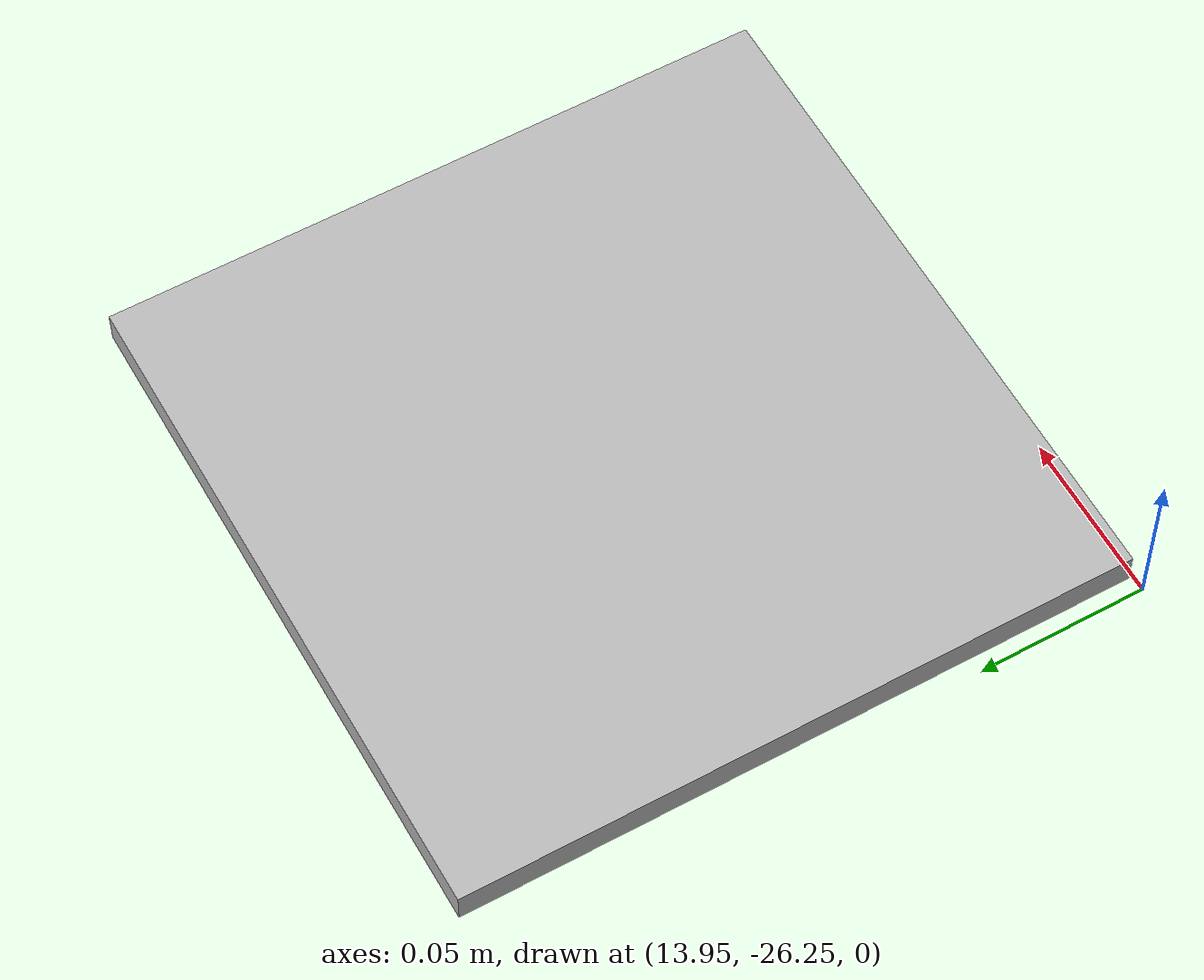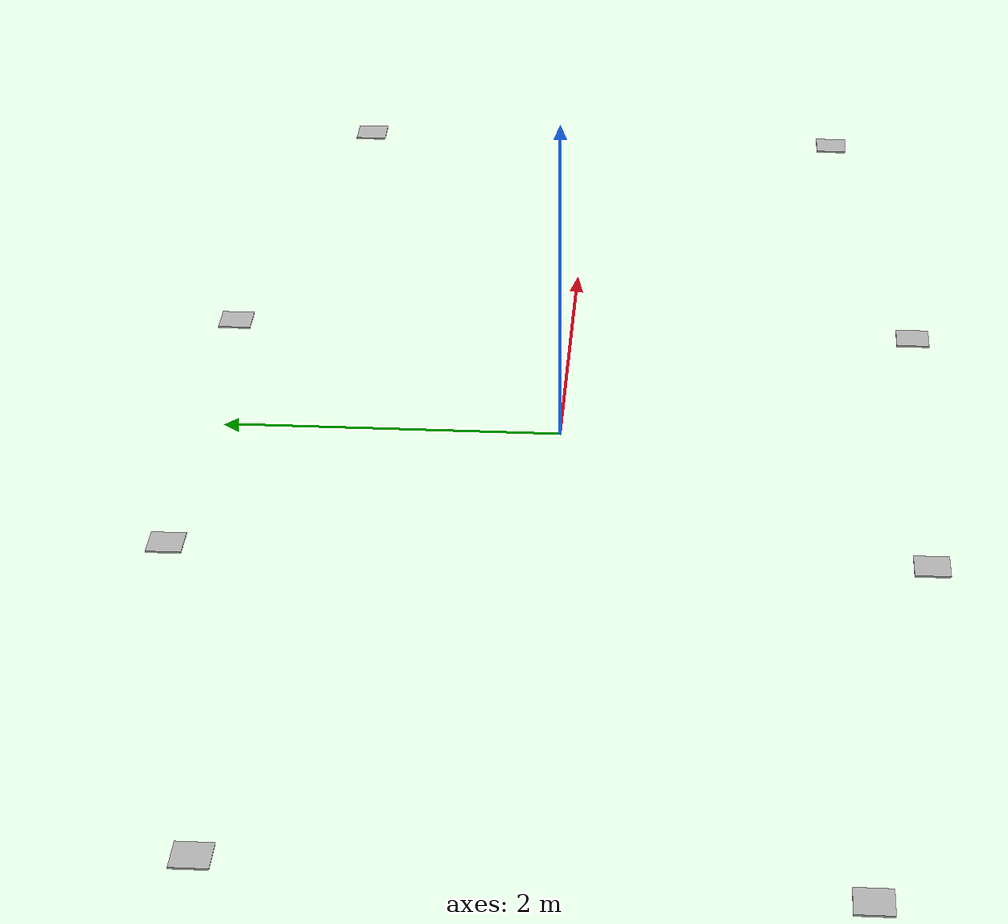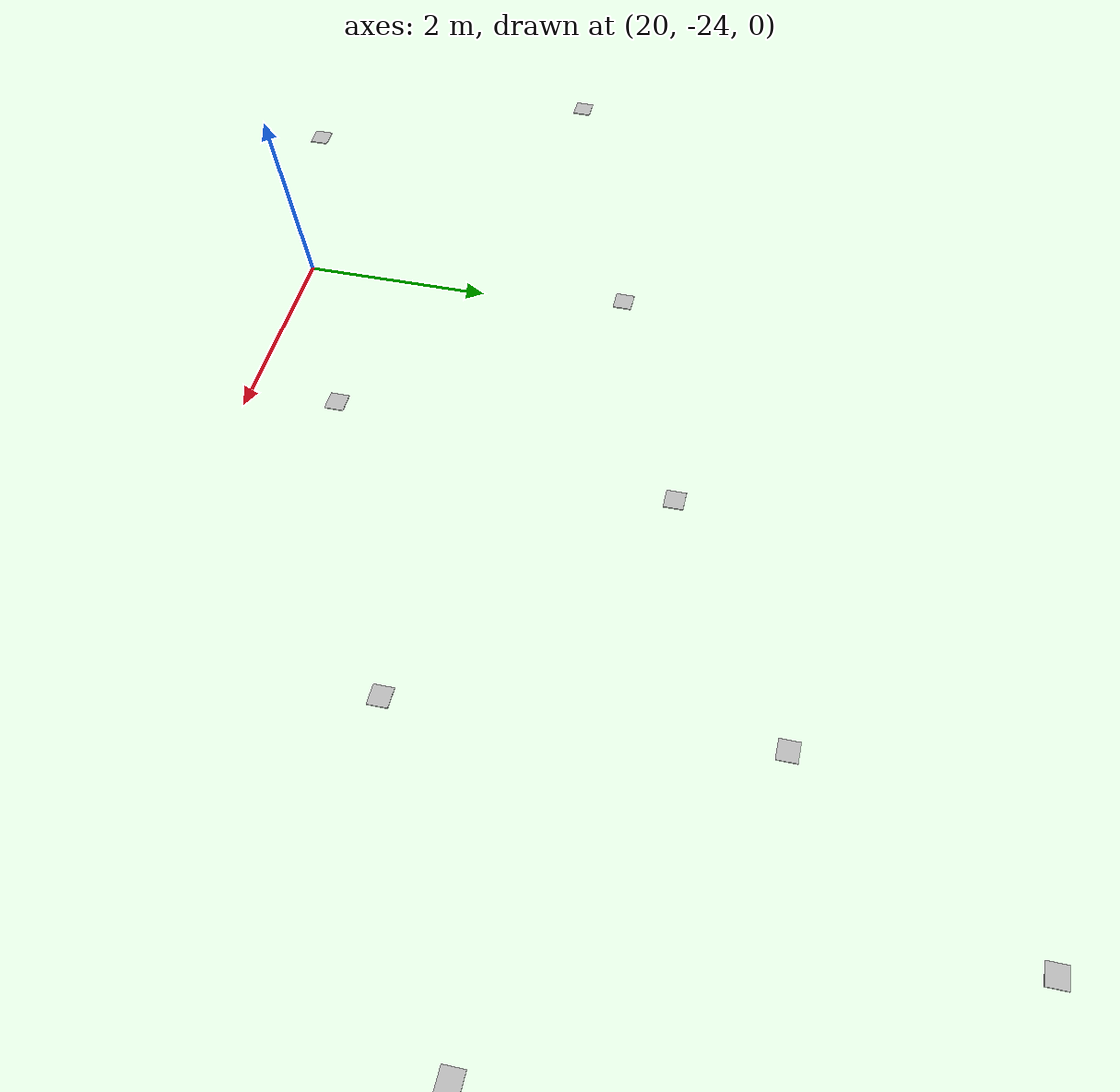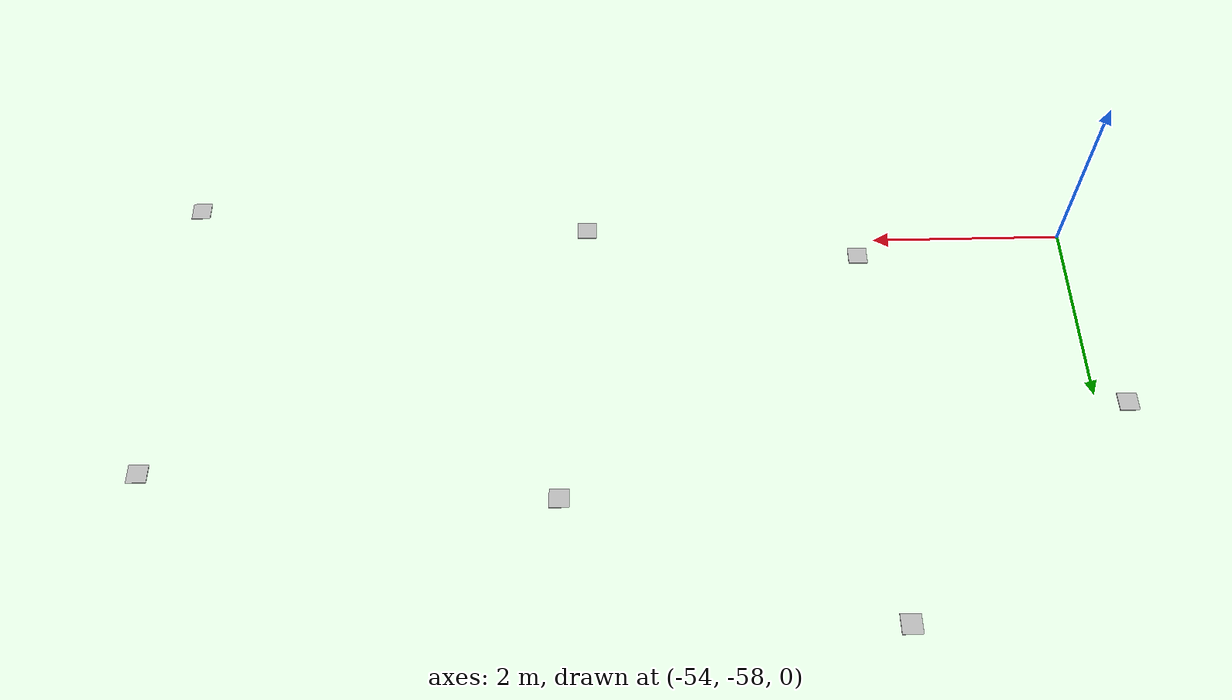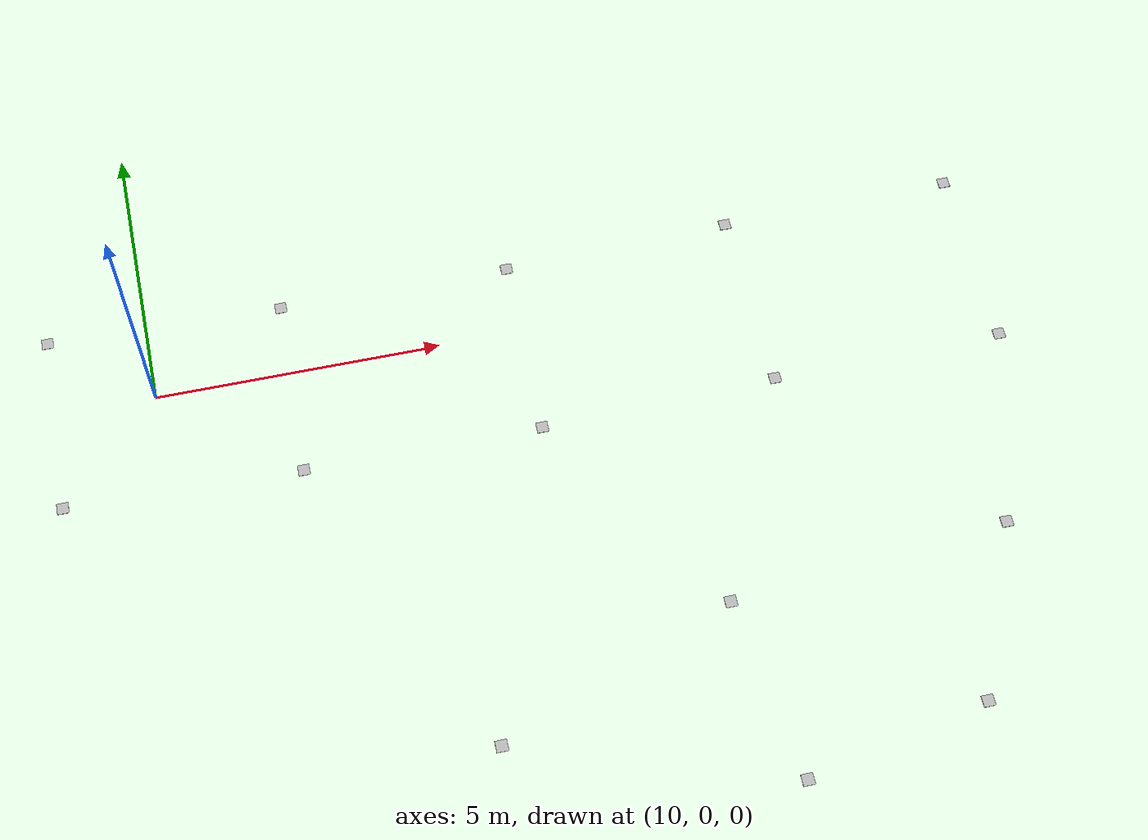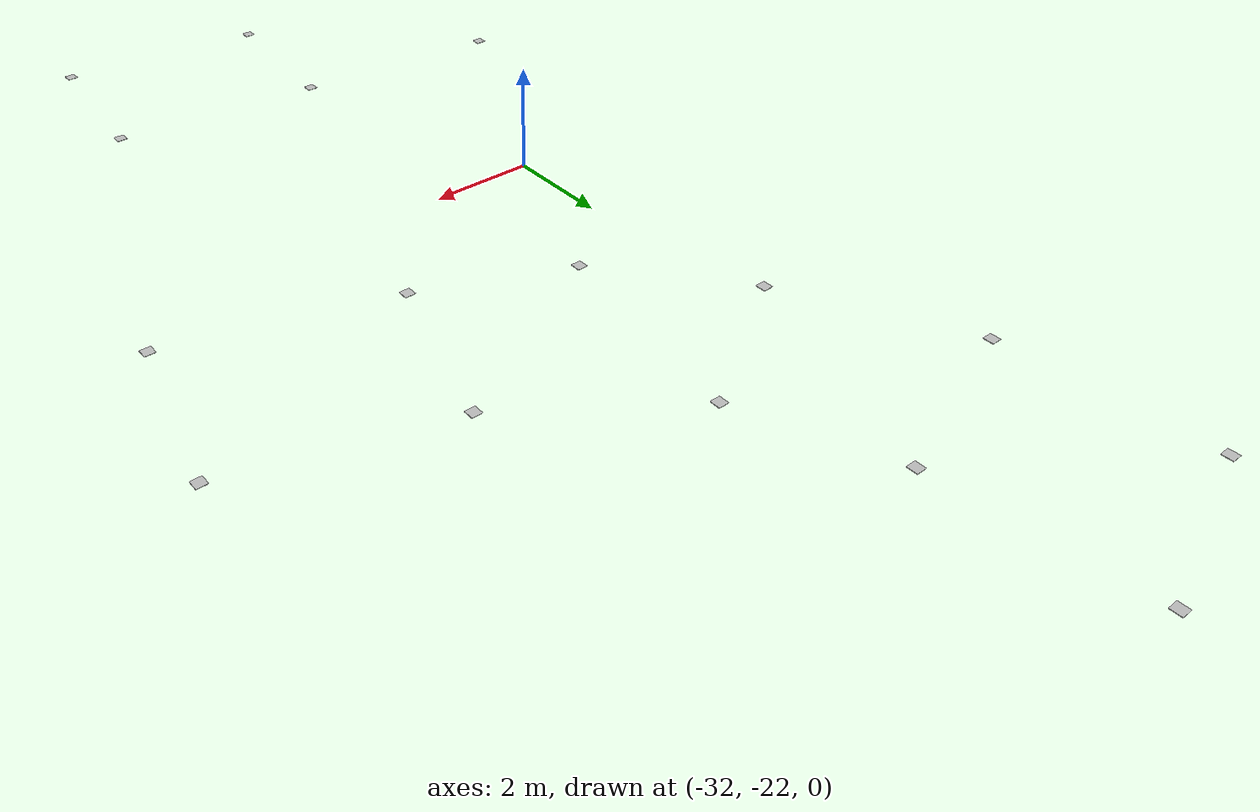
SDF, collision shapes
<?xml version='1.0' encoding='UTF-8'?>
<sdf version="1.4">
  <model name="some track">
    <include>
      <uri>model://cone_yellow</uri>
      <pose>4.093578918291426 -1.669082334597307 0 0 0 0</pose>
      <name>cone_right</name>
    </include>
    <include>
      <uri>model://cone_yellow</uri>
      <pose>8.177985801729772 -1.7770940832352355 0 0 0 0</pose>
      <name>cone_right</name>
    </include>
    <include>
      <uri>model://cone_yellow</uri>
      <pose>12.277250816349403 -1.9101901001497705 0 0 0 0</pose>
      <name>cone_right</name>
    </include>
    <include>
      <uri>model://cone_yellow</uri>
      <pose>16.424354162394057 -1.9535787473611423 0 0 0 0</pose>
      <name>cone_right</name>
    </include>
    <include>
      <uri>model://cone_yellow</uri>
      <pose>20.590228872757766 -1.8548417388576297 0 0 0 0</pose>
      <name>cone_right</name>
    </include>
    <include>
      <uri>model://cone_yellow</uri>
      <pose>24.679310632096197 -1.8132677045780727 0 0 0 0</pose>
      <name>cone_right</name>
    </include>
    <include>
      <uri>model://cone_yellow</uri>
      <pose>28.73326674350193 -1.9183003070122213 0 0 0 0</pose>
      <name>cone_right</name>
    </include>
    <include>
      <uri>model://cone_yellow</uri>
      <pose>32.90509844094713 -1.8422726537140328 0 0 0 0</pose>
      <name>cone_right</name>
    </include>
    <include>
      <uri>model://cone_yellow</uri>
      <pose>37.075822823643065 -1.6146499627549054 0 0 0 0</pose>
      <name>cone_right</name>
    </include>
    <include>
      <uri>model://cone_yellow</uri>
      <pose>41.11697629689065 -1.6291460038722299 0 0 0 0</pose>
      <name>cone_right</name>
    </include>
    <include>
      <uri>model://cone_yellow</uri>
      <pose>44.766192720714876 -2.4560858436284105 0 0 0 0</pose>
      <name>cone_right</name>
    </include>
    <include>
      <uri>model://cone_yellow</uri>
      <pose>48.00319957696629 -4.269020673951003 0 0 0 0</pose>
      <name>cone_right</name>
    </include>
    <include>
      <uri>model://cone_yellow</uri>
      <pose>50.396093773934254 -6.96626833489029 0 0 0 0</pose>
      <name>cone_right</name>
    </include>
    <include>
      <uri>model://cone_yellow</uri>
      <pose>50.79284388229671 -10.223572780608412 0 0 0 0</pose>
      <name>cone_right</name>
    </include>
    <include>
      <uri>model://cone_yellow</uri>
      <pose>49.44391889860853 -13.268438673401187 0 0 0 0</pose>
      <name>cone_right</name>
    </include>
    <include>
      <uri>model://cone_yellow</uri>
      <pose>46.75108228579256 -14.989631126950707 0 0 0 0</pose>
      <name>cone_right</name>
    </include>
    <include>
      <uri>model://cone_yellow</uri>
      <pose>43.35457431216825 -16.99235745303274 0 0 0 0</pose>
      <name>cone_right</name>
    </include>
    <include>
      <uri>model://cone_yellow</uri>
      <pose>39.95059588464543 -19.692401016026867 0 0 0 0</pose>
      <name>cone_right</name>
    </include>
    <include>
      <uri>model://cone_yellow</uri>
      <pose>36.77692927325473 -22.45417440933446 0 0 0 0</pose>
      <name>cone_right</name>
    </include>
    <include>
      <uri>model://cone_yellow</uri>
      <pose>33.51981267747556 -24.365835329963794 0 0 0 0</pose>
      <name>cone_right</name>
    </include>
    <include>
      <uri>model://cone_yellow</uri>
      <pose>29.916020815838895 -25.765759306669846 0 0 0 0</pose>
      <name>cone_right</name>
    </include>
    <include>
      <uri>model://cone_yellow</uri>
      <pose>26.107135192970738 -27.662315904737298 0 0 0 0</pose>
      <name>cone_right</name>
    </include>
    <include>
      <uri>model://cone_yellow</uri>
      <pose>22.454958221163206 -29.715123340057218 0 0 0 0</pose>
      <name>cone_right</name>
    </include>
    <include>
      <uri>model://cone_yellow</uri>
      <pose>18.867611389571472 -31.700906591183035 0 0 0 0</pose>
      <name>cone_right</name>
    </include>
    <include>
      <uri>model://cone_yellow</uri>
      <pose>15.244194474883924 -33.59770701222432 0 0 0 0</pose>
      <name>cone_right</name>
    </include>
    <include>
      <uri>model://cone_yellow</uri>
      <pose>11.582328674620328 -35.15095143704188 0 0 0 0</pose>
      <name>cone_right</name>
    </include>
    <include>
      <uri>model://cone_yellow</uri>
      <pose>7.83467268520717 -36.173989234694666 0 0 0 0</pose>
      <name>cone_right</name>
    </include>
    <include>
      <uri>model://cone_yellow</uri>
      <pose>3.890556023336182 -37.02326024503821 0 0 0 0</pose>
      <name>cone_right</name>
    </include>
    <include>
      <uri>model://cone_yellow</uri>
      <pose>-0.17828178954774715 -38.28765505642946 0 0 0 0</pose>
      <name>cone_right</name>
    </include>
    <include>
      <uri>model://cone_yellow</uri>
      <pose>-6.844634075578986 -44.5587514430575 0 0 0 0</pose>
      <name>cone_right</name>
    </include>
    <include>
      <uri>model://cone_yellow</uri>
      <pose>-8.22966258856023 -48.98934696673903 0 0 0 0</pose>
      <name>cone_right</name>
    </include>
    <include>
      <uri>model://cone_yellow</uri>
      <pose>-9.968437960309384 -52.45803329939996 0 0 0 0</pose>
      <name>cone_right</name>
    </include>
    <include>
      <uri>model://cone_yellow</uri>
      <pose>-12.750483103257501 -54.08610557075991 0 0 0 0</pose>
      <name>cone_right</name>
    </include>
    <include>
      <uri>model://cone_yellow</uri>
      <pose>-16.347172212227647 -55.06985390955768 0 0 0 0</pose>
      <name>cone_right</name>
    </include>
    <include>
      <uri>model://cone_yellow</uri>
      <pose>-20.218373073734895 -55.85794136041382 0 0 0 0</pose>
      <name>cone_right</name>
    </include>
    <include>
      <uri>model://cone_yellow</uri>
      <pose>-24.095356830106528 -56.15578316403575 0 0 0 0</pose>
      <name>cone_right</name>
    </include>
    <include>
      <uri>model://cone_yellow</uri>
      <pose>-28.09157756321372 -56.1325504077494 0 0 0 0</pose>
      <name>cone_right</name>
    </include>
    <include>
      <uri>model://cone_yellow</uri>
      <pose>-32.17635190530265 -56.0044773365759 0 0 0 0</pose>
      <name>cone_right</name>
    </include>
    <include>
      <uri>model://cone_yellow</uri>
      <pose>-36.235442804670875 -55.802862099436354 0 0 0 0</pose>
      <name>cone_right</name>
    </include>
    <include>
      <uri>model://cone_yellow</uri>
      <pose>-40.279222669866975 -55.52406362160621 0 0 0 0</pose>
      <name>cone_right</name>
    </include>
    <include>
      <uri>model://cone_yellow</uri>
      <pose>-44.49156273941009 -55.321823047161296 0 0 0 0</pose>
      <name>cone_right</name>
    </include>
    <include>
      <uri>model://cone_yellow</uri>
      <pose>-48.610026713118394 -54.964820999139214 0 0 0 0</pose>
      <name>cone_right</name>
    </include>
    <include>
      <uri>model://cone_yellow</uri>
      <pose>-51.84859043777979 -53.6112285619276 0 0 0 0</pose>
      <name>cone_right</name>
    </include>
    <include>
      <uri>model://cone_yellow</uri>
      <pose>-54.238406169165955 -51.05818807854777 0 0 0 0</pose>
      <name>cone_right</name>
    </include>
    <include>
      <uri>model://cone_yellow</uri>
      <pose>-56.276703911087665 -47.685528697769044 0 0 0 0</pose>
      <name>cone_right</name>
    </include>
    <include>
      <uri>model://cone_yellow</uri>
      <pose>-57.48504089627598 -44.06126784172032 0 0 0 0</pose>
      <name>cone_right</name>
    </include>
    <include>
      <uri>model://cone_yellow</uri>
      <pose>-57.27463373034528 -40.63393466734236 0 0 0 0</pose>
      <name>cone_right</name>
    </include>
    <include>
      <uri>model://cone_yellow</uri>
      <pose>-55.686673615978435 -37.47416684915148 0 0 0 0</pose>
      <name>cone_right</name>
    </include>
    <include>
      <uri>model://cone_yellow</uri>
      <pose>-53.10173840173592 -34.67148149603244 0 0 0 0</pose>
      <name>cone_right</name>
    </include>
    <include>
      <uri>model://cone_yellow</uri>
      <pose>-49.93743629789913 -32.60488267091678 0 0 0 0</pose>
      <name>cone_right</name>
    </include>
    <include>
      <uri>model://cone_yellow</uri>
      <pose>-46.40061367616558 -31.254651940884806 0 0 0 0</pose>
      <name>cone_right</name>
    </include>
    <include>
      <uri>model://cone_yellow</uri>
      <pose>-42.62742423112989 -30.50608754133872 0 0 0 0</pose>
      <name>cone_right</name>
    </include>
    <include>
      <uri>model://cone_yellow</uri>
      <pose>-38.73469045135508 -30.249498028088823 0 0 0 0</pose>
      <name>cone_right</name>
    </include>
    <include>
      <uri>model://cone_yellow</uri>
      <pose>-34.77040094046167 -30.35598656504051 0 0 0 0</pose>
      <name>cone_right</name>
    </include>
    <include>
      <uri>model://cone_yellow</uri>
      <pose>-30.76050337580091 -30.683957834804385 0 0 0 0</pose>
      <name>cone_right</name>
    </include>
    <include>
      <uri>model://cone_yellow</uri>
      <pose>-26.699244899987654 -31.077301987422583 0 0 0 0</pose>
      <name>cone_right</name>
    </include>
    <include>
      <uri>model://cone_yellow</uri>
      <pose>-22.599512591110845 -31.42835868670462 0 0 0 0</pose>
      <name>cone_right</name>
    </include>
    <include>
      <uri>model://cone_yellow</uri>
      <pose>-18.500353417033313 -31.772263873425636 0 0 0 0</pose>
      <name>cone_right</name>
    </include>
    <include>
      <uri>model://cone_yellow</uri>
      <pose>-14.389158628708918 -32.16756122038605 0 0 0 0</pose>
      <name>cone_right</name>
    </include>
    <include>
      <uri>model://cone_yellow</uri>
      <pose>-10.219095252689145 -32.50942699644491 0 0 0 0</pose>
      <name>cone_right</name>
    </include>
    <include>
      <uri>model://cone_yellow</uri>
      <pose>-5.971473185543388 -32.472996476981784 0 0 0 0</pose>
      <name>cone_right</name>
    </include>
    <include>
      <uri>model://cone_yellow</uri>
      <pose>-1.7065885356989208 -31.707867367252906 0 0 0 0</pose>
      <name>cone_right</name>
    </include>
    <include>
      <uri>model://cone_yellow</uri>
      <pose>2.41607524528646 -30.307633479479296 0 0 0 0</pose>
      <name>cone_right</name>
    </include>
    <include>
      <uri>model://cone_yellow</uri>
      <pose>6.350807904019766 -28.79276477096415 0 0 0 0</pose>
      <name>cone_right</name>
    </include>
    <include>
      <uri>model://cone_yellow</uri>
      <pose>10.206118615132384 -27.46722795825703 0 0 0 0</pose>
      <name>cone_right</name>
    </include>
    <include>
      <uri>model://cone_yellow</uri>
      <pose>14.056976740603968 -26.150779611940784 0 0 0 0</pose>
      <name>cone_right</name>
    </include>
    <include>
      <uri>model://cone_yellow</uri>
      <pose>17.875278388197295 -24.686925729717288 0 0 0 0</pose>
      <name>cone_right</name>
    </include>
    <include>
      <uri>model://cone_yellow</uri>
      <pose>21.770743940093332 -23.063536287657644 0 0 0 0</pose>
      <name>cone_right</name>
    </include>
    <include>
      <uri>model://cone_yellow</uri>
      <pose>23.704719081492893 -5.333351739800729 0 0 0 0</pose>
      <name>cone_right</name>
    </include>
    <include>
      <uri>model://cone_yellow</uri>
      <pose>18.79720886594478 -5.777552198392063 0 0 0 0</pose>
      <name>cone_right</name>
    </include>
    <include>
      <uri>model://cone_yellow</uri>
      <pose>14.592823679722484 -7.43530306138011 0 0 0 0</pose>
      <name>cone_right</name>
    </include>
    <include>
      <uri>model://cone_yellow</uri>
      <pose>10.788531695881762 -9.13751730859468 0 0 0 0</pose>
      <name>cone_right</name>
    </include>
    <include>
      <uri>model://cone_yellow</uri>
      <pose>7.044202628483385 -10.994082529455435 0 0 0 0</pose>
      <name>cone_right</name>
    </include>
    <include>
      <uri>model://cone_yellow</uri>
      <pose>3.3605596970105123 -12.946261419542902 0 0 0 0</pose>
      <name>cone_right</name>
    </include>
    <include>
      <uri>model://cone_yellow</uri>
      <pose>-0.27659650036769484 -14.597990013285273 0 0 0 0</pose>
      <name>cone_right</name>
    </include>
    <include>
      <uri>model://cone_yellow</uri>
      <pose>-3.992260797087182 -15.808438319849468 0 0 0 0</pose>
      <name>cone_right</name>
    </include>
    <include>
      <uri>model://cone_yellow</uri>
      <pose>-7.918129521192949 -17.035747039491294 0 0 0 0</pose>
      <name>cone_right</name>
    </include>
    <include>
      <uri>model://cone_yellow</uri>
      <pose>-11.921164940044726 -18.515724900906182 0 0 0 0</pose>
      <name>cone_right</name>
    </include>
    <include>
      <uri>model://cone_yellow</uri>
      <pose>-15.650760015975685 -19.28627508972984 0 0 0 0</pose>
      <name>cone_right</name>
    </include>
    <include>
      <uri>model://cone_yellow</uri>
      <pose>-19.193275207425085 -18.813689562588824 0 0 0 0</pose>
      <name>cone_right</name>
    </include>
    <include>
      <uri>model://cone_yellow</uri>
      <pose>-23.115869439393045 -17.921821136279437 0 0 0 0</pose>
      <name>cone_right</name>
    </include>
    <include>
      <uri>model://cone_yellow</uri>
      <pose>-26.95613643313799 -16.773008942239354 0 0 0 0</pose>
      <name>cone_right</name>
    </include>
    <include>
      <uri>model://cone_yellow</uri>
      <pose>-29.947123738818746 -14.689249657283607 0 0 0 0</pose>
      <name>cone_right</name>
    </include>
    <include>
      <uri>model://cone_yellow</uri>
      <pose>-31.596500448181242 -8.3397208630626 0 0 0 0</pose>
      <name>cone_right</name>
    </include>
    <include>
      <uri>model://cone_yellow</uri>
      <pose>-30.097486968288187 -5.069848657801431 0 0 0 0</pose>
      <name>cone_right</name>
    </include>
    <include>
      <uri>model://cone_yellow</uri>
      <pose>-16.267606265530954 -1.9432028752239916 0 0 0 0</pose>
      <name>cone_right</name>
    </include>
    <include>
      <uri>model://cone_yellow</uri>
      <pose>-12.154472765361303 -1.5401779894533876 0 0 0 0</pose>
      <name>cone_right</name>
    </include>
    <include>
      <uri>model://cone_yellow</uri>
      <pose>-8.218516154940115 -1.5181042020352065 0 0 0 0</pose>
      <name>cone_right</name>
    </include>
    <include>
      <uri>model://cone_yellow</uri>
      <pose>-4.189568501971331 -1.716110780290633 0 0 0 0</pose>
      <name>cone_right</name>
    </include>
    <include>
      <uri>model://cone_yellow</uri>
      <pose>-3.0049205655535545 -39.892250059348505 0 0 0 0</pose>
      <name>cone_right</name>
    </include>
    <include>
      <uri>model://cone_yellow</uri>
      <pose>-5.140716237721513 -42.02804573151648 0 0 0 0</pose>
      <name>cone_right</name>
    </include>
    <include>
      <uri>model://cone_yellow</uri>
      <pose>24.840172427696796 -21.534795014049003 0 0 0 0</pose>
      <name>cone_right</name>
    </include>
    <include>
      <uri>model://cone_yellow</uri>
      <pose>27.68696942145114 -20.016503284046685 0 0 0 0</pose>
      <name>cone_right</name>
    </include>
    <include>
      <uri>model://cone_yellow</uri>
      <pose>29.33178546228698 -16.885026590916908 0 0 0 0</pose>
      <name>cone_right</name>
    </include>
    <include>
      <uri>model://cone_yellow</uri>
      <pose>30.027669171871377 -13.24745265445302 0 0 0 0</pose>
      <name>cone_right</name>
    </include>
    <include>
      <uri>model://cone_yellow</uri>
      <pose>29.718600319045883 -9.992777634819312 0 0 0 0</pose>
      <name>cone_right</name>
    </include>
    <include>
      <uri>model://cone_yellow</uri>
      <pose>27.595825571623877 -6.901719669274982 0 0 0 0</pose>
      <name>cone_right</name>
    </include>
    <include>
      <uri>model://cone_yellow</uri>
      <pose>-31.096823223788 -11.98167797605808 0 0 0 0</pose>
      <name>cone_right</name>
    </include>
    <include>
      <uri>model://cone_yellow</uri>
      <pose>-28.002011562194646 -3.465458651957185 0 0 0 0</pose>
      <name>cone_right</name>
    </include>
    <include>
      <uri>model://cone_yellow</uri>
      <pose>-25.722690371168433 -2.9167331800434724 0 0 0 0</pose>
      <name>cone_right</name>
    </include>
    <include>
      <uri>model://cone_yellow</uri>
      <pose>-22.59917614642881 -2.5368463148724345 0 0 0 0</pose>
      <name>cone_right</name>
    </include>
    <include>
      <uri>model://cone_yellow</uri>
      <pose>-19.264613663260825 -2.1991691013870707 0 0 0 0</pose>
      <name>cone_right</name>
    </include>
    <include>
      <uri>model://cone_blue</uri>
      <pose>4.12850054326154 1.5807300415421908 0 0 0 0</pose>
      <name>cone_left</name>
    </include>
    <include>
      <uri>model://cone_blue</uri>
      <pose>8.263743577832155 1.4717742741836939 0 0 0 0</pose>
      <name>cone_left</name>
    </include>
    <include>
      <uri>model://cone_blue</uri>
      <pose>12.382693469421968 1.3380989644060641 0 0 0 0</pose>
      <name>cone_left</name>
    </include>
    <include>
      <uri>model://cone_blue</uri>
      <pose>16.45804462794766 1.29624662525979 0 0 0 0</pose>
      <name>cone_left</name>
    </include>
    <include>
      <uri>model://cone_blue</uri>
      <pose>20.512476060255263 1.394228051120411 0 0 0 0</pose>
      <name>cone_left</name>
    </include>
    <include>
      <uri>model://cone_blue</uri>
      <pose>24.646147737587427 1.4365630944679022 0 0 0 0</pose>
      <name>cone_left</name>
    </include>
    <include>
      <uri>model://cone_blue</uri>
      <pose>28.81660518124879 1.3306310103279766 0 0 0 0</pose>
      <name>cone_left</name>
    </include>
    <include>
      <uri>model://cone_blue</uri>
      <pose>32.84464143237658 1.4071649822646453 0 0 0 0</pose>
      <name>cone_left</name>
    </include>
    <include>
      <uri>model://cone_blue</uri>
      <pose>36.897887517898866 1.6304754627055222 0 0 0 0</pose>
      <name>cone_left</name>
    </include>
    <include>
      <uri>model://cone_blue</uri>
      <pose>41.12645986828627 1.6208401594634825 0 0 0 0</pose>
      <name>cone_left</name>
    </include>
    <include>
      <uri>model://cone_blue</uri>
      <pose>45.45408060605299 0.7202816189308353 0 0 0 0</pose>
      <name>cone_left</name>
    </include>
    <include>
      <uri>model://cone_blue</uri>
      <pose>49.54263822352653 -1.4067438436152666 0 0 0 0</pose>
      <name>cone_left</name>
    </include>
    <include>
      <uri>model://cone_blue</uri>
      <pose>52.77483871102815 -4.751754274368182 0 0 0 0</pose>
      <name>cone_left</name>
    </include>
    <include>
      <uri>model://cone_blue</uri>
      <pose>53.98099015119661 -9.59252336249631 0 0 0 0</pose>
      <name>cone_left</name>
    </include>
    <include>
      <uri>model://cone_blue</uri>
      <pose>48.71847191364971 -17.576497581215428 0 0 0 0</pose>
      <name>cone_left</name>
    </include>
    <include>
      <uri>model://cone_blue</uri>
      <pose>45.01289501922493 -19.787437493487225 0 0 0 0</pose>
      <name>cone_left</name>
    </include>
    <include>
      <uri>model://cone_blue</uri>
      <pose>41.97941514890953 -22.23137568958131 0 0 0 0</pose>
      <name>cone_left</name>
    </include>
    <include>
      <uri>model://cone_blue</uri>
      <pose>38.911263922907686 -24.90511618818005 0 0 0 0</pose>
      <name>cone_left</name>
    </include>
    <include>
      <uri>model://cone_blue</uri>
      <pose>35.18408312601059 -27.157376817051706 0 0 0 0</pose>
      <name>cone_left</name>
    </include>
    <include>
      <uri>model://cone_blue</uri>
      <pose>31.10941398321491 -28.788723538687858 0 0 0 0</pose>
      <name>cone_left</name>
    </include>
    <include>
      <uri>model://cone_blue</uri>
      <pose>27.560003200398242 -30.569492293089688 0 0 0 0</pose>
      <name>cone_left</name>
    </include>
    <include>
      <uri>model://cone_blue</uri>
      <pose>24.048721853579313 -32.5475105812352 0 0 0 0</pose>
      <name>cone_left</name>
    </include>
    <include>
      <uri>model://cone_blue</uri>
      <pose>20.441623161779617 -34.54431773643625 0 0 0 0</pose>
      <name>cone_left</name>
    </include>
    <include>
      <uri>model://cone_blue</uri>
      <pose>16.751789595138145 -36.47688344887867 0 0 0 0</pose>
      <name>cone_left</name>
    </include>
    <include>
      <uri>model://cone_blue</uri>
      <pose>12.855323781773023 -38.141266379847295 0 0 0 0</pose>
      <name>cone_left</name>
    </include>
    <include>
      <uri>model://cone_blue</uri>
      <pose>8.702003129233425 -39.306119165087914 0 0 0 0</pose>
      <name>cone_left</name>
    </include>
    <include>
      <uri>model://cone_blue</uri>
      <pose>4.576792348323452 -40.19998492720189 0 0 0 0</pose>
      <name>cone_left</name>
    </include>
    <include>
      <uri>model://cone_blue</uri>
      <pose>0.7909636704014276 -41.38976131482357 0 0 0 0</pose>
      <name>cone_left</name>
    </include>
    <include>
      <uri>model://cone_blue</uri>
      <pose>-2.2908240794894974 -43.48192992294716 0 0 0 0</pose>
      <name>cone_left</name>
    </include>
    <include>
      <uri>model://cone_blue</uri>
      <pose>-4.172693172444491 -46.40894921901466 0 0 0 0</pose>
      <name>cone_left</name>
    </include>
    <include>
      <uri>model://cone_blue</uri>
      <pose>-5.11090429322459 -49.90359348452028 0 0 0 0</pose>
      <name>cone_left</name>
    </include>
    <include>
      <uri>model://cone_blue</uri>
      <pose>-7.053962596839553 -53.8962034408392 0 0 0 0</pose>
      <name>cone_left</name>
    </include>
    <include>
      <uri>model://cone_blue</uri>
      <pose>-15.425666819076401 -58.18647512657992 0 0 0 0</pose>
      <name>cone_left</name>
    </include>
    <include>
      <uri>model://cone_blue</uri>
      <pose>-19.565299454946015 -59.04164908073646 0 0 0 0</pose>
      <name>cone_left</name>
    </include>
    <include>
      <uri>model://cone_blue</uri>
      <pose>-23.836265449811304 -59.39543926563924 0 0 0 0</pose>
      <name>cone_left</name>
    </include>
    <include>
      <uri>model://cone_blue</uri>
      <pose>-28.105792266832623 -59.3825193217855 0 0 0 0</pose>
      <name>cone_left</name>
    </include>
    <include>
      <uri>model://cone_blue</uri>
      <pose>-32.27773685397213 -59.25289558122718 0 0 0 0</pose>
      <name>cone_left</name>
    </include>
    <include>
      <uri>model://cone_blue</uri>
      <pose>-36.39645291519053 -59.048871302182164 0 0 0 0</pose>
      <name>cone_left</name>
    </include>
    <include>
      <uri>model://cone_blue</uri>
      <pose>-40.50252373124953 -58.766383259764275 0 0 0 0</pose>
      <name>cone_left</name>
    </include>
    <include>
      <uri>model://cone_blue</uri>
      <pose>-44.647147993647984 -58.568096792344186 0 0 0 0</pose>
      <name>cone_left</name>
    </include>
    <include>
      <uri>model://cone_blue</uri>
      <pose>-48.88976210304465 -58.2027598669412 0 0 0 0</pose>
      <name>cone_left</name>
    </include>
    <include>
      <uri>model://cone_blue</uri>
      <pose>-56.52618375697341 -53.36655843633828 0 0 0 0</pose>
      <name>cone_left</name>
    </include>
    <include>
      <uri>model://cone_blue</uri>
      <pose>-59.03897227824089 -49.39794613163984 0 0 0 0</pose>
      <name>cone_left</name>
    </include>
    <include>
      <uri>model://cone_blue</uri>
      <pose>-58.64138828055279 -36.12059333768293 0 0 0 0</pose>
      <name>cone_left</name>
    </include>
    <include>
      <uri>model://cone_blue</uri>
      <pose>-51.75143670222317 -29.908236136216267 0 0 0 0</pose>
      <name>cone_left</name>
    </include>
    <include>
      <uri>model://cone_blue</uri>
      <pose>-43.27987778525646 -27.322252690139994 0 0 0 0</pose>
      <name>cone_left</name>
    </include>
    <include>
      <uri>model://cone_blue</uri>
      <pose>-38.96031592381621 -27.007339311095365 0 0 0 0</pose>
      <name>cone_left</name>
    </include>
    <include>
      <uri>model://cone_blue</uri>
      <pose>-34.6890717556477 -27.107004329986353 0 0 0 0</pose>
      <name>cone_left</name>
    </include>
    <include>
      <uri>model://cone_blue</uri>
      <pose>-30.497616402583525 -27.444607523505436 0 0 0 0</pose>
      <name>cone_left</name>
    </include>
    <include>
      <uri>model://cone_blue</uri>
      <pose>-26.386094719019837 -27.842423788145243 0 0 0 0</pose>
      <name>cone_left</name>
    </include>
    <include>
      <uri>model://cone_blue</uri>
      <pose>-22.32231135354683 -28.190201884773465 0 0 0 0</pose>
      <name>cone_left</name>
    </include>
    <include>
      <uri>model://cone_blue</uri>
      <pose>-18.228646123177942 -28.533641458498913 0 0 0 0</pose>
      <name>cone_left</name>
    </include>
    <include>
      <uri>model://cone_blue</uri>
      <pose>-14.078194589575196 -28.932472138712154 0 0 0 0</pose>
      <name>cone_left</name>
    </include>
    <include>
      <uri>model://cone_blue</uri>
      <pose>-9.953672499454813 -29.270283473526312 0 0 0 0</pose>
      <name>cone_left</name>
    </include>
    <include>
      <uri>model://cone_blue</uri>
      <pose>-6.004598625688434 -29.223165295948654 0 0 0 0</pose>
      <name>cone_left</name>
    </include>
    <include>
      <uri>model://cone_blue</uri>
      <pose>-2.298364314754801 -28.512198199876092 0 0 0 0</pose>
      <name>cone_left</name>
    </include>
    <include>
      <uri>model://cone_blue</uri>
      <pose>1.3582587635057273 -27.234601704363225 0 0 0 0</pose>
      <name>cone_left</name>
    </include>
    <include>
      <uri>model://cone_blue</uri>
      <pose>5.182344537815374 -25.760077289234733 0 0 0 0</pose>
      <name>cone_left</name>
    </include>
    <include>
      <uri>model://cone_blue</uri>
      <pose>9.148605495960323 -24.394091774685112 0 0 0 0</pose>
      <name>cone_left</name>
    </include>
    <include>
      <uri>model://cone_blue</uri>
      <pose>13.005668830084062 -23.075515122945035 0 0 0 0</pose>
      <name>cone_left</name>
    </include>
    <include>
      <uri>model://cone_blue</uri>
      <pose>16.711043808315637 -21.652612324182556 0 0 0 0</pose>
      <name>cone_left</name>
    </include>
    <include>
      <uri>model://cone_blue</uri>
      <pose>26.03644384048835 -15.611744538038641 0 0 0 0</pose>
      <name>cone_left</name>
    </include>
    <include>
      <uri>model://cone_blue</uri>
      <pose>26.245682049393203 -12.098029688598837 0 0 0 0</pose>
      <name>cone_left</name>
    </include>
    <include>
      <uri>model://cone_blue</uri>
      <pose>22.439933114663273 -8.327148068563067 0 0 0 0</pose>
      <name>cone_left</name>
    </include>
    <include>
      <uri>model://cone_blue</uri>
      <pose>19.23973378613942 -8.99728381686692 0 0 0 0</pose>
      <name>cone_left</name>
    </include>
    <include>
      <uri>model://cone_blue</uri>
      <pose>15.818718985915458 -10.445233409121405 0 0 0 0</pose>
      <name>cone_left</name>
    </include>
    <include>
      <uri>model://cone_blue</uri>
      <pose>12.116588300241169 -12.10378864743362 0 0 0 0</pose>
      <name>cone_left</name>
    </include>
    <include>
      <uri>model://cone_blue</uri>
      <pose>8.488824404959376 -13.905365394951565 0 0 0 0</pose>
      <name>cone_left</name>
    </include>
    <include>
      <uri>model://cone_blue</uri>
      <pose>4.882825087142533 -15.817708455795914 0 0 0 0</pose>
      <name>cone_left</name>
    </include>
    <include>
      <uri>model://cone_blue</uri>
      <pose>1.0694331679057025 -17.556148922493467 0 0 0 0</pose>
      <name>cone_left</name>
    </include>
    <include>
      <uri>model://cone_blue</uri>
      <pose>-2.9778750200093045 -18.89607843736027 0 0 0 0</pose>
      <name>cone_left</name>
    </include>
    <include>
      <uri>model://cone_blue</uri>
      <pose>-6.948267247729401 -20.13766050870866 0 0 0 0</pose>
      <name>cone_left</name>
    </include>
    <include>
      <uri>model://cone_blue</uri>
      <pose>-10.792608579527034 -21.56348810383633 0 0 0 0</pose>
      <name>cone_left</name>
    </include>
    <include>
      <uri>model://cone_blue</uri>
      <pose>-19.549431925843184 -22.04411560135301 0 0 0 0</pose>
      <name>cone_left</name>
    </include>
    <include>
      <uri>model://cone_blue</uri>
      <pose>-23.828504229934268 -21.092728207656688 0 0 0 0</pose>
      <name>cone_left</name>
    </include>
    <include>
      <uri>model://cone_blue</uri>
      <pose>-27.884612061093062 -19.887560757235125 0 0 0 0</pose>
      <name>cone_left</name>
    </include>
    <include>
      <uri>model://cone_blue</uri>
      <pose>-16.480897938037476 1.2997905972392776 0 0 0 0</pose>
      <name>cone_left</name>
    </include>
    <include>
      <uri>model://cone_blue</uri>
      <pose>-12.472065129732686 1.6942671082554908 0 0 0 0</pose>
      <name>cone_left</name>
    </include>
    <include>
      <uri>model://cone_blue</uri>
      <pose>-8.24224278386339 1.7318091886692195 0 0 0 0</pose>
      <name>cone_left</name>
    </include>
    <include>
      <uri>model://cone_blue</uri>
      <pose>-4.032070496645967 1.5300707270065996 0 0 0 0</pose>
      <name>cone_left</name>
    </include>
    <include>
      <uri>model://cone_blue</uri>
      <pose>53.45565948808047 -13.296008013714783 0 0 0 0</pose>
      <name>cone_left</name>
    </include>
    <include>
      <uri>model://cone_blue</uri>
      <pose>51.56301593859009 -15.803760716789526 0 0 0 0</pose>
      <name>cone_left</name>
    </include>
    <include>
      <uri>model://cone_blue</uri>
      <pose>-9.57659955683959 -56.32144753756359 0 0 0 0</pose>
      <name>cone_left</name>
    </include>
    <include>
      <uri>model://cone_blue</uri>
      <pose>-12.4106361218317 -57.38934537364758 0 0 0 0</pose>
      <name>cone_left</name>
    </include>
    <include>
      <uri>model://cone_blue</uri>
      <pose>-51.79963707585242 -57.80007531060297 0 0 0 0</pose>
      <name>cone_left</name>
    </include>
    <include>
      <uri>model://cone_blue</uri>
      <pose>-54.332471687077245 -55.917563099557476 0 0 0 0</pose>
      <name>cone_left</name>
    </include>
    <include>
      <uri>model://cone_blue</uri>
      <pose>-60.138528366773 -45.94176366073177 0 0 0 0</pose>
      <name>cone_left</name>
    </include>
    <include>
      <uri>model://cone_blue</uri>
      <pose>-60.44802177268194 -42.2278427898245 0 0 0 0</pose>
      <name>cone_left</name>
    </include>
    <include>
      <uri>model://cone_blue</uri>
      <pose>-59.829034960864064 -39.163858071326 0 0 0 0</pose>
      <name>cone_left</name>
    </include>
    <include>
      <uri>model://cone_blue</uri>
      <pose>-56.74054868106445 -33.54139453064693 0 0 0 0</pose>
      <name>cone_left</name>
    </include>
    <include>
      <uri>model://cone_blue</uri>
      <pose>-54.290392550952006 -31.47810515792066 0 0 0 0</pose>
      <name>cone_left</name>
    </include>
    <include>
      <uri>model://cone_blue</uri>
      <pose>-48.53306296012859 -28.525559558147002 0 0 0 0</pose>
      <name>cone_left</name>
    </include>
    <include>
      <uri>model://cone_blue</uri>
      <pose>-45.88007043985881 -27.82033369832846 0 0 0 0</pose>
      <name>cone_left</name>
    </include>
    <include>
      <uri>model://cone_blue</uri>
      <pose>24.62951823656945 -17.92116404612827 0 0 0 0</pose>
      <name>cone_left</name>
    </include>
    <include>
      <uri>model://cone_blue</uri>
      <pose>22.27503480471726 -19.383277664158918 0 0 0 0</pose>
      <name>cone_left</name>
    </include>
    <include>
      <uri>model://cone_blue</uri>
      <pose>19.803856858749953 -20.447257057561515 0 0 0 0</pose>
      <name>cone_left</name>
    </include>
    <include>
      <uri>model://cone_blue</uri>
      <pose>25.100634201847132 -9.583119350229097 0 0 0 0</pose>
      <name>cone_left</name>
    </include>
    <include>
      <uri>model://cone_blue</uri>
      <pose>-13.531383423751024 -22.462527539997104 0 0 0 0</pose>
      <name>cone_left</name>
    </include>
    <include>
      <uri>model://cone_blue</uri>
      <pose>-16.363301489573516 -22.54011433632101 0 0 0 0</pose>
      <name>cone_left</name>
    </include>
    <include>
      <uri>model://cone_blue</uri>
      <pose>-30.63927201317179 -18.74105530243319 0 0 0 0</pose>
      <name>cone_left</name>
    </include>
    <include>
      <uri>model://cone_blue</uri>
      <pose>-32.659761500773456 -16.350142742104552 0 0 0 0</pose>
      <name>cone_left</name>
    </include>
    <include>
      <uri>model://cone_blue</uri>
      <pose>-34.41956700448401 -13.116273413368909 0 0 0 0</pose>
      <name>cone_left</name>
    </include>
    <include>
      <uri>model://cone_blue</uri>
      <pose>-34.7842583950482 -9.38831697649048 0 0 0 0</pose>
      <name>cone_left</name>
    </include>
    <include>
      <uri>model://cone_blue</uri>
      <pose>-34.135918145156296 -5.6198392739938114 0 0 0 0</pose>
      <name>cone_left</name>
    </include>
    <include>
      <uri>model://cone_blue</uri>
      <pose>-32.23141866109884 -2.742829415098498 0 0 0 0</pose>
      <name>cone_left</name>
    </include>
    <include>
      <uri>model://cone_blue</uri>
      <pose>-29.80014272400421 -0.5546810717133326 0 0 0 0</pose>
      <name>cone_left</name>
    </include>
    <include>
      <uri>model://cone_blue</uri>
      <pose>-26.35583514645348 0.5799143655974888 0 0 0 0</pose>
      <name>cone_left</name>
    </include>
    <include>
      <uri>model://cone_blue</uri>
      <pose>-22.810224404857152 0.839925819981211 0 0 0 0</pose>
      <name>cone_left</name>
    </include>
    <include>
      <uri>model://cone_blue</uri>
      <pose>-19.47566192168918 1.0087644267238929 0 0 0 0</pose>
      <name>cone_left</name>
    </include>
    <include>
      <uri>model://cone_orange_big</uri>
      <pose>-1.3 2.125 0 0 0 0</pose>
      <name>cone_orange_big</name>
    </include>
    <include>
      <uri>model://cone_orange_big</uri>
      <pose>-1.3 -2.125 0 0 0 0</pose>
      <name>cone_orange_big</name>
    </include>
    <include>
      <uri>model://cone_orange_big</uri>
      <pose>1.3 2.125 0 0 0 0</pose>
      <name>cone_orange_big</name>
    </include>
    <include>
      <uri>model://cone_orange_big</uri>
      <pose>1.3 -2.125 0 0 0 0</pose>
      <name>cone_orange_big</name>
    </include>
  </model>
</sdf>

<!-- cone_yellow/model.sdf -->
<sdf version='1.4'>
  <model name="cone_yellow">
    <link name="link">
    <collision name="collision"><geometry><box><size> 0.2 0.2 0.01</size>
             </box></geometry></collision>
      <visual name="visual">
        <geometry>
          <mesh>
            <uri>model://YellowCone.dae</uri>
            <scale>1 1 1</scale>
          </mesh>
        </geometry>
        <material>
            <script>
              <uri>model://cone_yellow/materials/scripts</uri>
              <uri>model://cone_yellow/materials/textures</uri>
              <name>cone_yellow/Image</name>
            </script>
        </material>
      </visual>
    </link>
  </model>
</sdf>

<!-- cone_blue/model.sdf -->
<sdf version='1.4'>
  <model name="cone_blue">
    <link name="link">
    <collision name="collision"><geometry><box><size> 0.2 0.2 0.01</size>
             </box></geometry></collision>
      <visual name="visual">
        <geometry>
          <mesh>
            <uri>model://BlueCone.dae</uri>
            <scale>1 1 1</scale>
          </mesh>
        </geometry>
        <material>
            <script>
              <uri>model://cone_blue/materials/scripts</uri>
              <uri>model://cone_blue/materials/textures</uri>
              <name>cone_blue/Image</name>
            </script>
        </material>
      </visual>
    </link>
  </model>
</sdf>

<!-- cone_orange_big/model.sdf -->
<sdf version='1.4'>
  <model name="cone_orange_big">
    <link name="link">
    <collision name="collision"><geometry><box><size> 0.2 0.2 0.01</size>
             </box></geometry></collision>
      <visual name="visual">
        <geometry>
          <mesh>
            <uri>model://BigOrangeCone.dae</uri>
            <scale>1 1 1</scale>
          </mesh>
        </geometry>
        <material>
            <script>
              <uri>model://cone_orange_big/materials/scripts</uri>
              <uri>model://cone_orange_big/materials/textures</uri>
              <name>cone_orange_big/Image</name>
            </script>
        </material>
      </visual>
    </link>
  </model>
</sdf>
